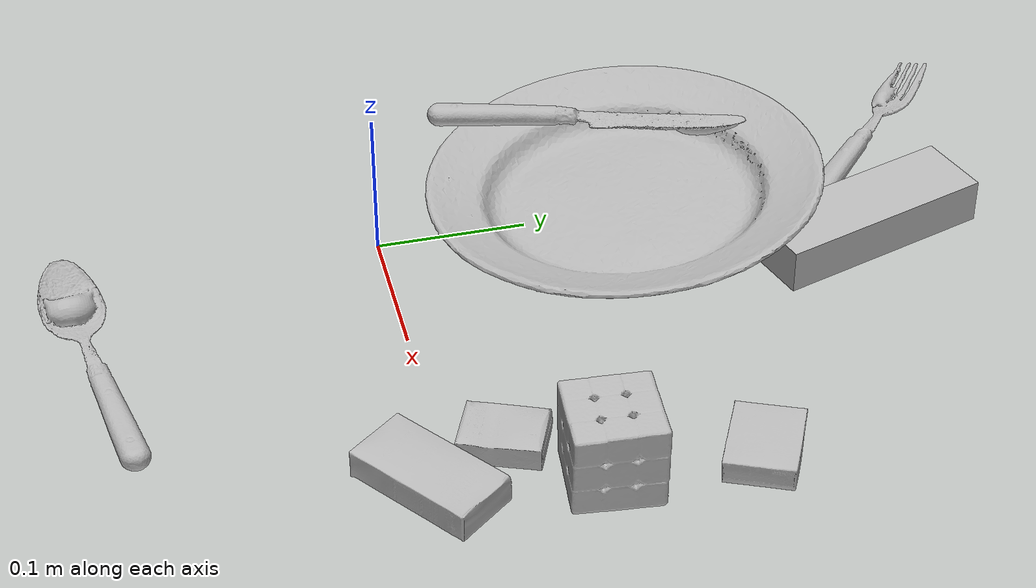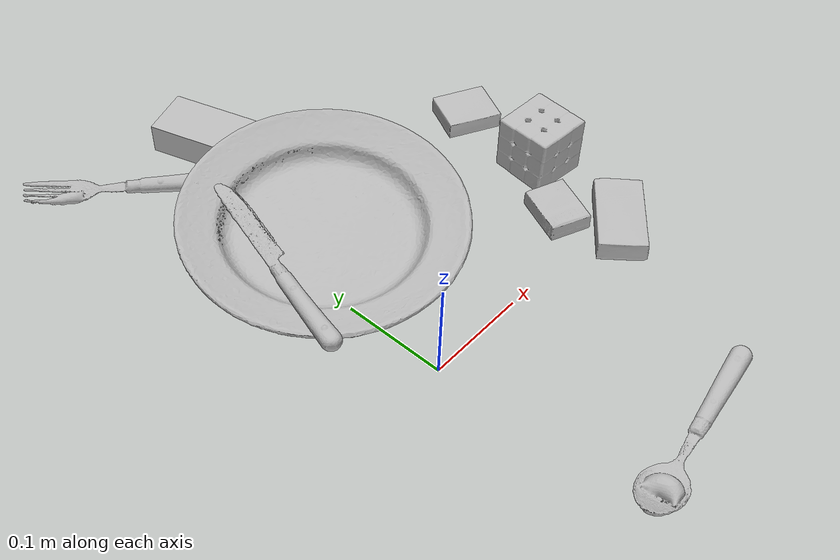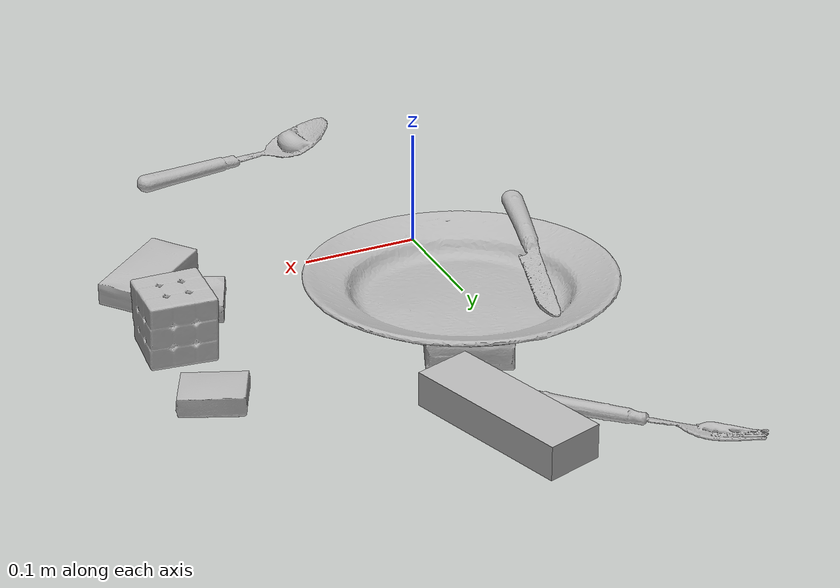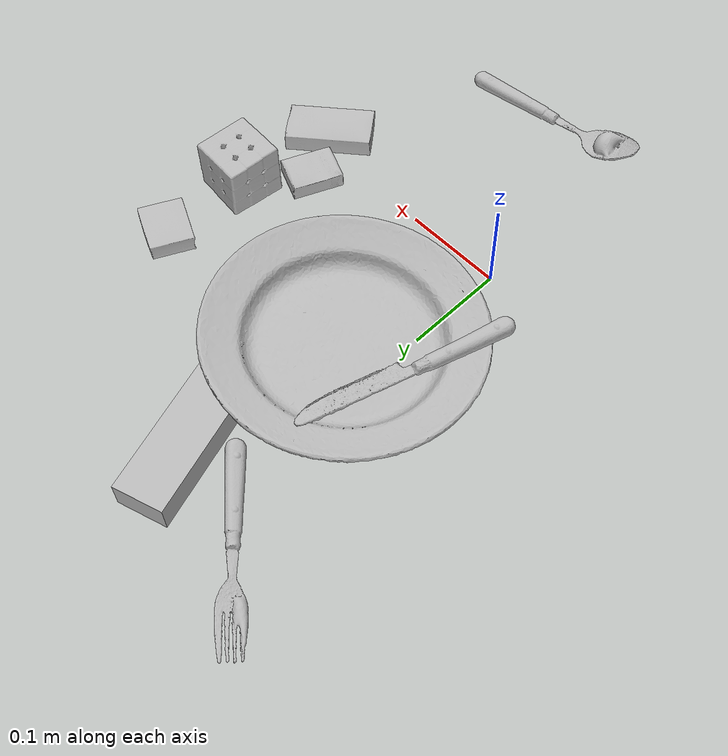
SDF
<sdf version="1.4">
  <world name="default">
    <light name="light1" type="point">
      <pose>0 0 1 0 0 0</pose>
      <diffuse>3 3 3 1</diffuse>
      <specular>3 3 3 1</specular>
    </light>
    <light name="light2" type="point">
      <pose>0 0.5 2 0 0 0</pose>
      <diffuse>1 1 1 1</diffuse>
      <specular>1 1 1 1</specular>
    </light>
    <light name="light3" type="point">
      <pose>0 0.5 2 0 0 0</pose>
      <diffuse>3 3 3 1</diffuse>
      <specular>3 3 3 1</specular>
    </light>
    <scene>
      <ambient>0.7 0.7 0.7</ambient>
    </scene>
    <model name="box11">
      <link name="link_box11">
        <collision name="default">
          <geometry>
            <mesh>
              <uri>model://pudding_box/collision_meshes/collision.obj</uri>
              <scale>0.5 0.5 0.5</scale>
            </mesh>
          </geometry>
          <surface>
            <friction>
              <ode>
                <mu>0.5</mu>
                <mu2>0.5</mu2>
              </ode>
            </friction>
          <contact>
        <ode>
            <max_vel>0</max_vel>
            <min_depth>0.0001</min_depth>
            <kp>1e8</kp>
        </ode>
    </contact></surface>
        </collision>
        <visual name="default">
          <geometry>
            <mesh>
              <uri>model://pudding_box/visual_meshes/visual.dae</uri>
              <scale>0.5 0.5 0.5</scale>
            </mesh>
          </geometry>
        </visual>
        <inertial>
          <mass>0.03786866366863251</mass>
          <pose>0.00024474109522998333 0.00040339428232982755 -0.0002594413817860186 0.005213102272185547 -0.006603797326323335 0.020079825161634604</pose>
          <inertia>
            <ixx>1.0702144e-05</ixx>
            <iyy>7.2004777e-06</iyy>
            <izz>1.580451e-05</izz>
            <ixy>0</ixy>
            <ixz>0</ixz>
            <iyz>0</iyz>
          </inertia>
        </inertial>
      </link>
      <pose>0.25772666931152344 0.1847565621137619 0.009862903505563736 0.02234825224131833 -0.011391836795712042 1.1248542300034579</pose>
    </model>
    <model name="box12">
      <link name="link_box12">
        <collision name="default">
          <geometry>
            <mesh>
              <uri>model://gelatin_box/collision_meshes/collision.obj</uri>
              <scale>1.0 1.0 1.0</scale>
            </mesh>
          </geometry>
          <surface>
            <friction>
              <ode>
                <mu>0.5</mu>
                <mu2>0.5</mu2>
              </ode>
            </friction>
          <contact>
        <ode>
            <max_vel>0</max_vel>
            <min_depth>0.0001</min_depth>
            <kp>1e8</kp>
        </ode>
    </contact></surface>
        </collision>
        <visual name="default">
          <geometry>
            <mesh>
              <uri>model://gelatin_box/visual_meshes/visual.dae</uri>
              <scale>1.0 1.0 1.0</scale>
            </mesh>
          </geometry>
        </visual>
        <inertial>
          <mass>0.12588495016098022</mass>
          <pose>0.0004319618456065655 0.00011156871914863586 -0.0003640321083366871 -0.0010503723379331838 -0.004755819617810625 0.016440561335826234</pose>
          <inertia>
            <ixx>8.886451e-05</ixx>
            <iyy>6.3475454e-05</iyy>
            <izz>0.00013527159</izz>
            <ixy>0</ixy>
            <ixz>0</ixz>
            <iyz>0</iyz>
          </inertia>
        </inertial>
      </link>
      <pose>0.0366043895483017 0.18671122193336487 0.015257230959832668 -0.000756568658482322 0.0014179453428983233 2.745055054020924</pose>
    </model>
    <model name="box13">
      <link name="link_box13">
        <collision name="default">
          <geometry>
            <mesh>
              <uri>model://rubiks_cube/collision_meshes/collision.obj</uri>
              <scale>1.0 1.0 1.0</scale>
            </mesh>
          </geometry>
          <surface>
            <friction>
              <ode>
                <mu>0.5</mu>
                <mu2>0.5</mu2>
              </ode>
            </friction>
          <contact>
        <ode>
            <max_vel>0</max_vel>
            <min_depth>0.0001</min_depth>
            <kp>1e8</kp>
        </ode>
    </contact></surface>
        </collision>
        <visual name="default">
          <geometry>
            <mesh>
              <uri>model://rubiks_cube/visual_meshes/visual.dae</uri>
              <scale>1.0 1.0 1.0</scale>
            </mesh>
          </geometry>
        </visual>
        <inertial>
          <mass>0.24923686683177948</mass>
          <pose>2.6721039830590598e-05 5.256966323941015e-05 -7.264316082000732e-06 -0.05467307197132049 -0.09814178001312306 -0.03445579173896148</pose>
          <inertia>
            <ixx>0.00013772011</ixx>
            <iyy>0.00013707785</iyy>
            <izz>0.00013886133</izz>
            <ixy>0</ixy>
            <ixz>0</ixz>
            <iyz>0</iyz>
          </inertia>
        </inertial>
      </link>
      <pose>0.2535609006881714 0.09197674691677094 0.028679002076387405 -1.8187696249512548e-06 4.953114864689399e-07 1.4987848084816393</pose>
    </model>
    <model name="box21">
      <link name="link_box21">
        <collision name="default">
          <geometry>
            <mesh>
              <uri>model://cracker_box/collision_meshes/collision.obj</uri>
              <scale>0.25 0.25 0.25</scale>
            </mesh>
          </geometry>
          <surface>
            <friction>
              <ode>
                <mu>0.5</mu>
                <mu2>0.5</mu2>
              </ode>
            </friction>
          <contact>
        <ode>
            <max_vel>0</max_vel>
            <min_depth>0.0001</min_depth>
            <kp>1e8</kp>
        </ode>
    </contact></surface>
        </collision>
        <visual name="default">
          <geometry>
            <mesh>
              <uri>model://cracker_box/visual_meshes/visual.dae</uri>
              <scale>0.25 0.25 0.25</scale>
            </mesh>
          </geometry>
        </visual>
        <inertial>
          <mass>0.030397580936551094</mass>
          <pose>0.00023660376609768718 6.358562677633017e-05 -0.0004257384280208498 -0.0003162076301819785 -0.011106490531717715 0.002546795235004545</pose>
          <inertia>
            <ixx>4.8323677e-06</ixx>
            <iyy>7.979188e-06</iyy>
            <izz>1.1387034e-05</izz>
            <ixy>0</ixy>
            <ixz>0</ixz>
            <iyz>0</iyz>
          </inertia>
        </inertial>
      </link>
      <pose>0.21067385375499725 0.036414310336112976 0.00909603014588356 -0.014050329945815386 -0.00501686636930703 1.1659330300001933</pose>
    </model>
    <model name="box22">
      <link name="link_box22">
        <collision name="default">
          <geometry>
            <mesh>
              <uri>model://jenga/collision_meshes/collision.obj</uri>
              <scale>1.0 1.0 1.0</scale>
            </mesh>
          </geometry>
          <surface>
            <friction>
              <ode>
                <mu>0.5</mu>
                <mu2>0.5</mu2>
              </ode>
            </friction>
          <contact>
        <ode>
            <max_vel>0</max_vel>
            <min_depth>0.0001</min_depth>
            <kp>1e8</kp>
        </ode>
    </contact></surface>
        </collision>
        <visual name="default">
          <geometry>
            <mesh>
              <uri>model://jenga/visual_meshes/visual.dae</uri>
              <scale>1.0 1.0 1.0</scale>
            </mesh>
          </geometry>
        </visual>
        <inertial>
          <mass>0.22754427790641785</mass>
          <pose>-2.502855807051674e-07 -0.00010250010382151231 -4.0923401684267446e-05 0.0 -7.34215461761844e-07 0.0</pose>
          <inertia>
            <ixx>6.2967025e-05</ixx>
            <iyy>0.00042666285</iyy>
            <izz>0.00045549884</izz>
            <ixy>0</ixy>
            <ixz>0</ixz>
            <iyz>0</iyz>
          </inertia>
        </inertial>
      </link>
      <pose>0.06432707607746124 0.3167247474193573 0.014999997802078724 3.81910790179633e-08 1.1183150361118034e-08 1.8775210917031082</pose>
    </model>
    <model name="box23">
      <link name="link_box23">
        <collision name="default">
          <geometry>
            <mesh>
              <uri>model://sugar_box/collision_meshes/collision.obj</uri>
              <scale>0.5 0.5 0.5</scale>
            </mesh>
          </geometry>
          <surface>
            <friction>
              <ode>
                <mu>0.5</mu>
                <mu2>0.5</mu2>
              </ode>
            </friction>
          <contact>
        <ode>
            <max_vel>0</max_vel>
            <min_depth>0.0001</min_depth>
            <kp>1e8</kp>
        </ode>
    </contact></surface>
        </collision>
        <visual name="default">
          <geometry>
            <mesh>
              <uri>model://sugar_box/visual_meshes/visual.dae</uri>
              <scale>0.5 0.5 0.5</scale>
            </mesh>
          </geometry>
        </visual>
        <inertial>
          <mass>0.07313712686300278</mass>
          <pose>0.0005171863595023751 1.924554817378521e-05 -0.00018182402709499002 -0.0004046264167799433 0.0010506636386831275 0.0026153785560066108</pose>
          <inertia>
            <ixx>1.5234412e-05</ixx>
            <iyy>4.924075e-05</iyy>
            <izz>5.894705e-05</izz>
            <ixy>0</ixy>
            <ixz>0</ixz>
            <iyz>0</iyz>
          </inertia>
        </inertial>
      </link>
      <pose>0.23776111006736755 -0.014358952641487122 0.011399309150874615 0.0007754254968869613 -0.023432916237848746 -2.4779862197918647</pose>
    </model>
    <model name="plate1">
      <link name="link_plate1">
        <collision name="default">
          <geometry>
            <mesh>
              <uri>model://plate/collision_meshes/collision.obj</uri>
              <scale>1.0 1.0 1.0</scale>
            </mesh>
          </geometry>
          <surface>
            <friction>
              <ode>
                <mu>0.5</mu>
                <mu2>0.5</mu2>
              </ode>
            </friction>
          <contact>
        <ode>
            <max_vel>0</max_vel>
            <min_depth>0.0001</min_depth>
            <kp>1e8</kp>
        </ode>
    </contact></surface>
        </collision>
        <visual name="default">
          <geometry>
            <mesh>
              <uri>model://plate/visual_meshes/visual.dae</uri>
              <scale>1.0 1.0 1.0</scale>
            </mesh>
          </geometry>
        </visual>
        <inertial>
          <mass>0.2069685012102127</mass>
          <pose>-0.0006044612964615226 0.0002782598603516817 -0.0010561986127868295 0.0022188143427174073 -0.003225461822968263 0.4526007532235607</pose>
          <inertia>
            <ixx>0.0009682027</ixx>
            <iyy>0.0009589421</iyy>
            <izz>0.0018936595</izz>
            <ixy>0</ixy>
            <ixz>0</ixz>
            <iyz>0</iyz>
          </inertia>
        </inertial>
      </link>
      <pose>0.029897913336753845 0.16056561470031738 0.041636426001787186 0.05399934668753368 -0.04376702677172697 0.2357654019960235</pose>
    </model>
    <model name="silverware1">
      <link name="link_silverware1">
        <collision name="default">
          <geometry>
            <mesh>
              <uri>model://knife/collision_meshes/collision.obj</uri>
              <scale>1.0 1.0 1.0</scale>
            </mesh>
          </geometry>
          <surface>
            <friction>
              <ode>
                <mu>0.5</mu>
                <mu2>0.5</mu2>
              </ode>
            </friction>
          <contact>
        <ode>
            <max_vel>0</max_vel>
            <min_depth>0.0001</min_depth>
            <kp>1e8</kp>
        </ode>
    </contact></surface>
        </collision>
        <visual name="default">
          <geometry>
            <mesh>
              <uri>model://knife/visual_meshes/visual.dae</uri>
              <scale>1.0 1.0 1.0</scale>
            </mesh>
          </geometry>
        </visual>
        <inertial>
          <mass>0.01404397189617157</mass>
          <pose>-0.02378525771200657 0.0015275126788765192 5.0620223191799596e-05 0.07306830572090188 0.017248424252748085 -0.00740981553779352</pose>
          <inertia>
            <ixx>3.9862488e-07</ixx>
            <iyy>5.3954667e-05</iyy>
            <izz>5.408303e-05</izz>
            <ixy>0</ixy>
            <ixz>0</ixz>
            <iyz>0</iyz>
          </inertia>
        </inertial>
      </link>
      <pose>-0.036635491997003555 0.15202279388904572 0.05283045023679733 -0.05729398684649855 -0.010877992228389926 1.2755223933694246</pose>
    </model>
    <model name="silverware2">
      <link name="link_silverware2">
        <collision name="default">
          <geometry>
            <mesh>
              <uri>model://fork/collision_meshes/collision.obj</uri>
              <scale>1.0 1.0 1.0</scale>
            </mesh>
          </geometry>
          <surface>
            <friction>
              <ode>
                <mu>0.5</mu>
                <mu2>0.5</mu2>
              </ode>
            </friction>
          <contact>
        <ode>
            <max_vel>0</max_vel>
            <min_depth>0.0001</min_depth>
            <kp>1e8</kp>
        </ode>
    </contact></surface>
        </collision>
        <visual name="default">
          <geometry>
            <mesh>
              <uri>model://fork/visual_meshes/visual.dae</uri>
              <scale>1.0 1.0 1.0</scale>
            </mesh>
          </geometry>
        </visual>
        <inertial>
          <mass>0.012992284260690212</mass>
          <pose>-0.029570037499070168 0.0004658822435885668 0.00032188609475269914 -0.013552170713958372 -0.010977837352032947 0.014453895109592321</pose>
          <inertia>
            <ixx>4.5545306e-07</ixx>
            <iyy>3.3919117e-05</iyy>
            <izz>3.4122822e-05</izz>
            <ixy>0</ixy>
            <ixz>0</ixz>
            <iyz>0</iyz>
          </inertia>
        </inertial>
      </link>
      <pose>-0.035877373069524765 0.3539031147956848 0.005700659938156605 -0.17950981629362217 0.025100252651571103 2.39902077926905</pose>
    </model>
    <model name="silverware3">
      <link name="link_silverware3">
        <collision name="default">
          <geometry>
            <mesh>
              <uri>model://spoon/collision_meshes/collision.obj</uri>
              <scale>1.0 1.0 1.0</scale>
            </mesh>
          </geometry>
          <surface>
            <friction>
              <ode>
                <mu>0.5</mu>
                <mu2>0.5</mu2>
              </ode>
            </friction>
          <contact>
        <ode>
            <max_vel>0</max_vel>
            <min_depth>0.0001</min_depth>
            <kp>1e8</kp>
        </ode>
    </contact></surface>
        </collision>
        <visual name="default">
          <geometry>
            <mesh>
              <uri>model://spoon/visual_meshes/visual.dae</uri>
              <scale>1.0 1.0 1.0</scale>
            </mesh>
          </geometry>
        </visual>
        <inertial>
          <mass>0.01562128309160471</mass>
          <pose>-0.0055263228714466095 -0.0016034174477681518 -0.0007271653157658875 0.03521671072610287 -0.03906584128735088 0.006150609582760137</pose>
          <inertia>
            <ixx>8.688809e-07</ixx>
            <iyy>5.9438455e-05</iyy>
            <izz>5.986695e-05</izz>
            <ixy>0</ixy>
            <ixz>0</ixz>
            <iyz>0</iyz>
          </inertia>
        </inertial>
      </link>
      <pose>0.08843307197093964 -0.19562147557735443 0.00838526152074337 0.006728584514824363 0.026893006895794352 -2.989769769528282</pose>
    </model>
  <physics type="ode">
      <max_contacts>50</max_contacts>
      <ode>
        <solver>
          <type>quick</type>
          <iters>75</iters>
        </solver>
        <constraints>
          <contact_max_correcting_vel>0</contact_max_correcting_vel>
          <contact_surface_layer>0</contact_surface_layer>
        </constraints>
      </ode>
    </physics></world>
</sdf>
